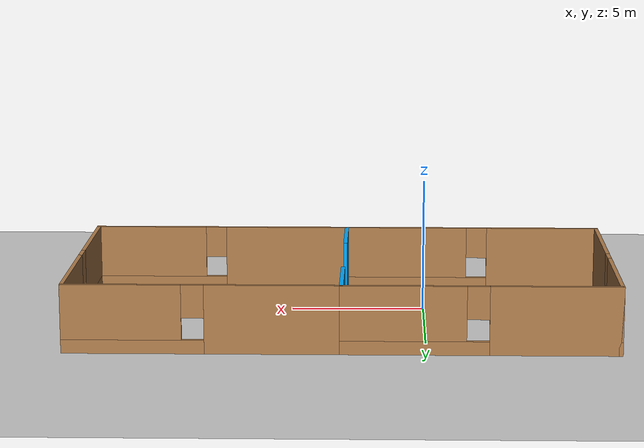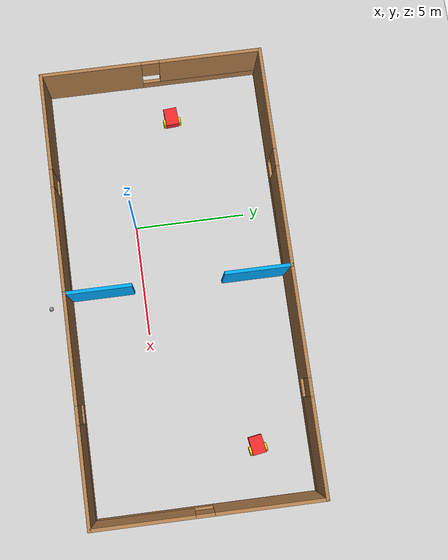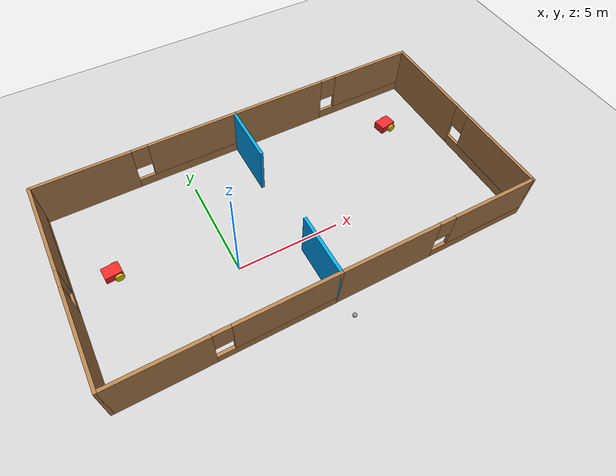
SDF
<sdf version="1.6">
 <world name="default">
  <plugin name="hello" filename="libhello.so"/>
  <light name="sun" type="directional">
   <pose>0 0 10 0 -0 0</pose>
   <diffuse>0.8 0.8 0.8 1</diffuse>
   <specular>0.2 0.2 0.2 1</specular>
   <attenuation>
    <range>1000</range>
    <constant>0.9</constant>
    <linear>0.01</linear>
    <quadratic>0.001</quadratic>
   </attenuation>
   <direction>-0.5 0.1 -0.9</direction>
  </light>
  <model name="ground_plane">
   <static>1</static>
   <link name="link">
    <collision name="collision">
     <geometry><plane><normal>0 0 1</normal><size>100 100</size></plane></geometry>
     <surface><friction><ode><mu>100</mu><mu2>50</mu2></ode></friction></surface>
    </collision>
    <visual name="visual">
     <cast_shadows>0</cast_shadows>
     <geometry><plane><normal>0 0 1</normal><size>100 100</size></plane></geometry>
     <material>
      <script><uri>file://media/materials/scripts/gazebo.material</uri><name>Gazebo/Grey</name></script>
     </material>
    </visual>
   </link>
  </model>
  <gravity>0 0 -9.8</gravity>
  <magnetic_field>6e-06 2.3e-05 -4.2e-05</magnetic_field>
  <atmosphere type="adiabatic"/>
  <physics name="default_physics" default="0" type="ode">
   <max_step_size>0.001</max_step_size>
   <real_time_factor>1</real_time_factor>
   <real_time_update_rate>1000</real_time_update_rate>
  </physics>
  <scene><ambient>0.4 0.4 0.4 1</ambient><background>0.7 0.7 0.7 1</background><shadows>1</shadows></scene>
  <spherical_coordinates>
   <surface_model>EARTH_WGS84</surface_model>
   <latitude_deg>0</latitude_deg>
   <longitude_deg>0</longitude_deg>
   <elevation>0</elevation>
   <heading_deg>0</heading_deg>
  </spherical_coordinates>
  <model name="building">
   <pose>2.99 1.585 0 0 -0 0</pose>
   <link name="Wall_1">
    <pose>-4.925 -4.925 0 0 -0 0</pose>
    <visual name="Wall_1_Visual_0">
     <pose>-2.80081 0 1.25 0 -0 0</pose>
     <geometry><box><size>4.39839 0.15 2.5</size></box></geometry>
     <material>
      <script><uri>file://media/materials/scripts/gazebo.material</uri><name>Gazebo/Wood</name></script>
      <ambient>1 1 1 1</ambient>
     </material>
     <meta><layer>0</layer></meta>
    </visual>
    <collision name="Wall_1_Collision_0">
     <geometry><box><size>4.39839 0.15 2.5</size></box></geometry>
     <pose>-2.80081 0 1.25 0 -0 0</pose>
    </collision>
    <visual name="Wall_1_Visual_1">
     <pose>2.19919 0 0.25 0 -0 0</pose>
     <geometry><box><size>5.60161 0.15 0.5</size></box></geometry>
     <material>
      <script><uri>file://media/materials/scripts/gazebo.material</uri><name>Gazebo/Wood</name></script>
      <ambient>1 1 1 1</ambient>
     </material>
     <meta><layer>0</layer></meta>
    </visual>
    <collision name="Wall_1_Collision_1">
     <geometry><box><size>5.60161 0.15 0.5</size></box></geometry>
     <pose>2.19919 0 0.25 0 -0 0</pose>
    </collision>
    <visual name="Wall_1_Visual_2">
     <pose>2.59919 0 1.5 0 -0 0</pose>
     <geometry><box><size>4.80161 0.15 2</size></box></geometry>
     <material>
      <script><uri>file://media/materials/scripts/gazebo.material</uri><name>Gazebo/Wood</name></script>
      <ambient>1 1 1 1</ambient>
     </material>
     <meta><layer>0</layer></meta>
    </visual>
    <collision name="Wall_1_Collision_2">
     <geometry><box><size>4.80161 0.15 2</size></box></geometry>
     <pose>2.59919 0 1.5 0 -0 0</pose>
    </collision>
    <visual name="Wall_1_Visual_3">
     <pose>-0.201613 0 1.9 0 -0 0</pose>
     <geometry><box><size>0.8 0.15 1.2</size></box></geometry>
     <material>
      <script><uri>file://media/materials/scripts/gazebo.material</uri><name>Gazebo/Wood</name></script>
      <ambient>1 1 1 1</ambient>
     </material>
     <meta><layer>0</layer></meta>
    </visual>
    <collision name="Wall_1_Collision_3">
     <geometry><box><size>0.8 0.15 1.2</size></box></geometry>
     <pose>-0.201613 0 1.9 0 -0 0</pose>
    </collision>
   </link>
   <link name="Wall_11">
    <pose>4.925 4.925 0 0 -0 0</pose>
    <visual name="Wall_11_Visual_0">
     <pose>-2.54076 0 1.25 0 -0 0</pose>
     <geometry><box><size>4.91847 0.15 2.5</size></box></geometry>
     <material>
      <script><uri>file://media/materials/scripts/gazebo.material</uri><name>Gazebo/Wood</name></script>
      <ambient>1 1 1 1</ambient>
     </material>
     <meta><layer>0</layer></meta>
    </visual>
    <collision name="Wall_11_Collision_0">
     <geometry><box><size>4.91847 0.15 2.5</size></box></geometry>
     <pose>-2.54076 0 1.25 0 -0 0</pose>
    </collision>
    <visual name="Wall_11_Visual_1">
     <pose>2.45924 0 0.25 0 -0 0</pose>
     <geometry><box><size>5.08153 0.15 0.5</size></box></geometry>
     <material>
      <script><uri>file://media/materials/scripts/gazebo.material</uri><name>Gazebo/Wood</name></script>
      <ambient>1 1 1 1</ambient>
     </material>
     <meta><layer>0</layer></meta>
    </visual>
    <collision name="Wall_11_Collision_1">
     <geometry><box><size>5.08153 0.15 0.5</size></box></geometry>
     <pose>2.45924 0 0.25 0 -0 0</pose>
    </collision>
    <visual name="Wall_11_Visual_2">
     <pose>2.85924 0 1.5 0 -0 0</pose>
     <geometry><box><size>4.28153 0.15 2</size></box></geometry>
     <material>
      <script><uri>file://media/materials/scripts/gazebo.material</uri><name>Gazebo/Wood</name></script>
      <ambient>1 1 1 1</ambient>
     </material>
     <meta><layer>0</layer></meta>
    </visual>
    <collision name="Wall_11_Collision_2">
     <geometry><box><size>4.28153 0.15 2</size></box></geometry>
     <pose>2.85924 0 1.5 0 -0 0</pose>
    </collision>
    <visual name="Wall_11_Visual_3">
     <pose>0.318475 0 1.9 0 -0 0</pose>
     <geometry><box><size>0.8 0.15 1.2</size></box></geometry>
     <material>
      <script><uri>file://media/materials/scripts/gazebo.material</uri><name>Gazebo/Wood</name></script>
      <ambient>1 1 1 1</ambient>
     </material>
     <meta><layer>0</layer></meta>
    </visual>
    <collision name="Wall_11_Collision_3">
     <geometry><box><size>0.8 0.15 1.2</size></box></geometry>
     <pose>0.318475 0 1.9 0 -0 0</pose>
    </collision>
   </link>
   <link name="Wall_12">
    <pose>9.85 0 0 0 0 -1.5708</pose>
    <visual name="Wall_12_Visual_0">
     <pose>-2.63217 0 1.25 0 -0 0</pose>
     <geometry><box><size>4.73566 0.15 2.5</size></box></geometry>
     <material>
      <script><uri>file://media/materials/scripts/gazebo.material</uri><name>Gazebo/Wood</name></script>
      <ambient>1 1 1 1</ambient>
     </material>
     <meta><layer>0</layer></meta>
    </visual>
    <collision name="Wall_12_Collision_0">
     <geometry><box><size>4.73566 0.15 2.5</size></box></geometry>
     <pose>-2.63217 0 1.25 0 -0 0</pose>
    </collision>
    <visual name="Wall_12_Visual_1">
     <pose>2.36783 0 0.25 0 -0 0</pose>
     <geometry><box><size>5.26434 0.15 0.5</size></box></geometry>
     <material>
      <script><uri>file://media/materials/scripts/gazebo.material</uri><name>Gazebo/Wood</name></script>
      <ambient>1 1 1 1</ambient>
     </material>
     <meta><layer>0</layer></meta>
    </visual>
    <collision name="Wall_12_Collision_1">
     <geometry><box><size>5.26434 0.15 0.5</size></box></geometry>
     <pose>2.36783 0 0.25 0 -0 0</pose>
    </collision>
    <visual name="Wall_12_Visual_2">
     <pose>2.76783 0 1.5 0 -0 0</pose>
     <geometry><box><size>4.46434 0.15 2</size></box></geometry>
     <material>
      <script><uri>file://media/materials/scripts/gazebo.material</uri><name>Gazebo/Wood</name></script>
      <ambient>1 1 1 1</ambient>
     </material>
     <meta><layer>0</layer></meta>
    </visual>
    <collision name="Wall_12_Collision_2">
     <geometry><box><size>4.46434 0.15 2</size></box></geometry>
     <pose>2.76783 0 1.5 0 -0 0</pose>
    </collision>
    <visual name="Wall_12_Visual_3">
     <pose>0.135659 0 1.9 0 -0 0</pose>
     <geometry><box><size>0.8 0.15 1.2</size></box></geometry>
     <material>
      <script><uri>file://media/materials/scripts/gazebo.material</uri><name>Gazebo/Wood</name></script>
      <ambient>1 1 1 1</ambient>
     </material>
     <meta><layer>0</layer></meta>
    </visual>
    <collision name="Wall_12_Collision_3">
     <geometry><box><size>0.8 0.15 1.2</size></box></geometry>
     <pose>0.135659 0 1.9 0 -0 0</pose>
    </collision>
   </link>
   <link name="Wall_2">
    <collision name="Wall_2_Collision">
     <geometry><box><size>3 0.15 2.5</size></box></geometry>
     <pose>0 0 1.25 0 -0 0</pose>
    </collision>
    <visual name="Wall_2_Visual">
     <pose>0 0 1.25 0 -0 0</pose>
     <geometry><box><size>3 0.15 2.5</size></box></geometry>
     <material>
      <script><uri>file://media/materials/scripts/gazebo.material</uri><name>Gazebo/Grey</name></script>
      <ambient>0 0.666667 1 1</ambient>
     </material>
     <meta><layer>0</layer></meta>
    </visual>
    <pose>0 -3.5 0 0 -0 1.5708</pose>
   </link>
   <link name="Wall_4">
    <pose>4.925 -4.925 0 0 -0 0</pose>
    <visual name="Wall_4_Visual_0">
     <pose>-2.57135 0 1.25 0 -0 0</pose>
     <geometry><box><size>4.85729 0.15 2.5</size></box></geometry>
     <material>
      <script><uri>file://media/materials/scripts/gazebo.material</uri><name>Gazebo/Wood</name></script>
      <ambient>1 1 1 1</ambient>
     </material>
     <meta><layer>0</layer></meta>
    </visual>
    <collision name="Wall_4_Collision_0">
     <geometry><box><size>4.85729 0.15 2.5</size></box></geometry>
     <pose>-2.57135 0 1.25 0 -0 0</pose>
    </collision>
    <visual name="Wall_4_Visual_1">
     <pose>2.42865 0 0.25 0 -0 0</pose>
     <geometry><box><size>5.14271 0.15 0.5</size></box></geometry>
     <material>
      <script><uri>file://media/materials/scripts/gazebo.material</uri><name>Gazebo/Wood</name></script>
      <ambient>1 1 1 1</ambient>
     </material>
     <meta><layer>0</layer></meta>
    </visual>
    <collision name="Wall_4_Collision_1">
     <geometry><box><size>5.14271 0.15 0.5</size></box></geometry>
     <pose>2.42865 0 0.25 0 -0 0</pose>
    </collision>
    <visual name="Wall_4_Visual_2">
     <pose>2.82865 0 1.5 0 -0 0</pose>
     <geometry><box><size>4.3427 0.15 2</size></box></geometry>
     <material>
      <script><uri>file://media/materials/scripts/gazebo.material</uri><name>Gazebo/Wood</name></script>
      <ambient>1 1 1 1</ambient>
     </material>
     <meta><layer>0</layer></meta>
    </visual>
    <collision name="Wall_4_Collision_2">
     <geometry><box><size>4.3427 0.15 2</size></box></geometry>
     <pose>2.82865 0 1.5 0 -0 0</pose>
    </collision>
    <visual name="Wall_4_Visual_3">
     <pose>0.257295 0 1.9 0 -0 0</pose>
     <geometry><box><size>0.8 0.15 1.2</size></box></geometry>
     <material>
      <script><uri>file://media/materials/scripts/gazebo.material</uri><name>Gazebo/Wood</name></script>
      <ambient>1 1 1 1</ambient>
     </material>
     <meta><layer>0</layer></meta>
    </visual>
    <collision name="Wall_4_Collision_3">
     <geometry><box><size>0.8 0.15 1.2</size></box></geometry>
     <pose>0.257295 0 1.9 0 -0 0</pose>
    </collision>
   </link>
   <link name="Wall_7">
    <pose>-9.85 0 0 0 -0 1.5708</pose>
    <visual name="Wall_7_Visual_0">
     <pose>-2.70665 0 1.25 0 -0 0</pose>
     <geometry><box><size>4.5867 0.15 2.5</size></box></geometry>
     <material>
      <script><uri>file://media/materials/scripts/gazebo.material</uri><name>Gazebo/Wood</name></script>
      <ambient>1 1 1 1</ambient>
     </material>
     <meta><layer>0</layer></meta>
    </visual>
    <collision name="Wall_7_Collision_0">
     <geometry><box><size>4.5867 0.15 2.5</size></box></geometry>
     <pose>-2.70665 0 1.25 0 -0 0</pose>
    </collision>
    <visual name="Wall_7_Visual_1">
     <pose>2.29335 0 0.25 0 -0 0</pose>
     <geometry><box><size>5.4133 0.15 0.5</size></box></geometry>
     <material>
      <script><uri>file://media/materials/scripts/gazebo.material</uri><name>Gazebo/Wood</name></script>
      <ambient>1 1 1 1</ambient>
     </material>
     <meta><layer>0</layer></meta>
    </visual>
    <collision name="Wall_7_Collision_1">
     <geometry><box><size>5.4133 0.15 0.5</size></box></geometry>
     <pose>2.29335 0 0.25 0 -0 0</pose>
    </collision>
    <visual name="Wall_7_Visual_2">
     <pose>2.69335 0 1.5 0 -0 0</pose>
     <geometry><box><size>4.6133 0.15 2</size></box></geometry>
     <material>
      <script><uri>file://media/materials/scripts/gazebo.material</uri><name>Gazebo/Wood</name></script>
      <ambient>1 1 1 1</ambient>
     </material>
     <meta><layer>0</layer></meta>
    </visual>
    <collision name="Wall_7_Collision_2">
     <geometry><box><size>4.6133 0.15 2</size></box></geometry>
     <pose>2.69335 0 1.5 0 -0 0</pose>
    </collision>
    <visual name="Wall_7_Visual_3">
     <pose>-0.013298 0 1.9 0 -0 0</pose>
     <geometry><box><size>0.8 0.15 1.2</size></box></geometry>
     <material>
      <script><uri>file://media/materials/scripts/gazebo.material</uri><name>Gazebo/Wood</name></script>
      <ambient>1 1 1 1</ambient>
     </material>
     <meta><layer>0</layer></meta>
    </visual>
    <collision name="Wall_7_Collision_3">
     <geometry><box><size>0.8 0.15 1.2</size></box></geometry>
     <pose>-0.013298 0 1.9 0 -0 0</pose>
    </collision>
   </link>
   <link name="Wall_8">
    <pose>-4.925 4.925 0 0 -0 0</pose>
    <visual name="Wall_8_Visual_0">
     <pose>-2.64785 0 1.25 0 -0 0</pose>
     <geometry><box><size>4.70429 0.15 2.5</size></box></geometry>
     <material>
      <script><uri>file://media/materials/scripts/gazebo.material</uri><name>Gazebo/Wood</name></script>
      <ambient>1 1 1 1</ambient>
     </material>
     <meta><layer>0</layer></meta>
    </visual>
    <collision name="Wall_8_Collision_0">
     <geometry><box><size>4.70429 0.15 2.5</size></box></geometry>
     <pose>-2.64785 0 1.25 0 -0 0</pose>
    </collision>
    <visual name="Wall_8_Visual_1">
     <pose>2.35215 0 0.25 0 -0 0</pose>
     <geometry><box><size>5.29571 0.15 0.5</size></box></geometry>
     <material>
      <script><uri>file://media/materials/scripts/gazebo.material</uri><name>Gazebo/Wood</name></script>
      <ambient>1 1 1 1</ambient>
     </material>
     <meta><layer>0</layer></meta>
    </visual>
    <collision name="Wall_8_Collision_1">
     <geometry><box><size>5.29571 0.15 0.5</size></box></geometry>
     <pose>2.35215 0 0.25 0 -0 0</pose>
    </collision>
    <visual name="Wall_8_Visual_2">
     <pose>2.75215 0 1.5 0 -0 0</pose>
     <geometry><box><size>4.49571 0.15 2</size></box></geometry>
     <material>
      <script><uri>file://media/materials/scripts/gazebo.material</uri><name>Gazebo/Wood</name></script>
      <ambient>1 1 1 1</ambient>
     </material>
     <meta><layer>0</layer></meta>
    </visual>
    <collision name="Wall_8_Collision_2">
     <geometry><box><size>4.49571 0.15 2</size></box></geometry>
     <pose>2.75215 0 1.5 0 -0 0</pose>
    </collision>
    <visual name="Wall_8_Visual_3">
     <pose>0.10429 0 1.9 0 -0 0</pose>
     <geometry><box><size>0.8 0.15 1.2</size></box></geometry>
     <material>
      <script><uri>file://media/materials/scripts/gazebo.material</uri><name>Gazebo/Wood</name></script>
      <ambient>1 1 1 1</ambient>
     </material>
     <meta><layer>0</layer></meta>
    </visual>
    <collision name="Wall_8_Collision_3">
     <geometry><box><size>0.8 0.15 1.2</size></box></geometry>
     <pose>0.10429 0 1.9 0 -0 0</pose>
    </collision>
   </link>
   <link name="Wall_9">
    <collision name="Wall_9_Collision">
     <geometry><box><size>3 0.15 2.5</size></box></geometry>
     <pose>0 0 1.25 0 -0 0</pose>
    </collision>
    <visual name="Wall_9_Visual">
     <pose>0 0 1.25 0 -0 0</pose>
     <geometry><box><size>3 0.15 2.5</size></box></geometry>
     <material>
      <script><uri>file://media/materials/scripts/gazebo.material</uri><name>Gazebo/Grey</name></script>
      <ambient>0 0.666667 1 1</ambient>
     </material>
     <meta><layer>0</layer></meta>
    </visual>
    <pose>0 3.5 0 0 0 -1.5708</pose>
   </link>
   <static>1</static>
  </model>
  <model name="robot_clone">
   <link name="link_0">
    <pose>-0.05 0 0.075004 0 -0 0</pose>
    <inertial>
     <mass>0.762516</mass>
     <inertia>
      <ixx>0.0753222</ixx>
      <ixy>0</ixy>
      <ixz>0</ixz>
      <iyy>0.21107</iyy>
      <iyz>0</iyz>
      <izz>0.262834</izz>
     </inertia>
    </inertial>
    <visual name="visual">
     <geometry><box><size>0.8 0.6 0.4</size></box></geometry>
     <material>
      <lighting>1</lighting>
      <script><uri>file://media/materials/scripts/gazebo.material</uri><name>Gazebo/Grey</name></script>
      <shader type="pixel"><normal_map>__default__</normal_map></shader>
      <ambient>0.937 0.161 0.161 1</ambient>
      <diffuse>0.7 0.7 0.7 1</diffuse>
      <specular>0.01 0.01 0.01 1</specular>
      <emissive>0 0 0 1</emissive>
     </material>
    </visual>
    <collision name="collision">
     <geometry><box><size>0.8 0.6 0.4</size></box></geometry>
     <surface>
      <friction>
       <ode><mu>1</mu><mu2>1</mu2><fdir1>0 0 0</fdir1><slip1>0</slip1><slip2>0</slip2></ode>
       <torsional>
        <coefficient>1</coefficient>
        <patch_radius>0</patch_radius>
        <surface_radius>0</surface_radius>
        <use_patch_radius>1</use_patch_radius>
        <ode><slip>0</slip></ode>
       </torsional>
      </friction>
      <bounce><restitution_coefficient>0</restitution_coefficient><threshold>1e+06</threshold></bounce>
      <contact>
       <collide_without_contact>0</collide_without_contact>
       <collide_without_contact_bitmask>1</collide_without_contact_bitmask>
       <collide_bitmask>1</collide_bitmask>
       <ode>
        <soft_cfm>0</soft_cfm>
        <soft_erp>0.2</soft_erp>
        <kp>1e+13</kp>
        <kd>1</kd>
        <max_vel>0.01</max_vel>
        <min_depth>0</min_depth>
       </ode>
       <bullet>
        <split_impulse>1</split_impulse>
        <split_impulse_penetration_threshold>-0.01</split_impulse_penetration_threshold>
        <soft_cfm>0</soft_cfm>
        <soft_erp>0.2</soft_erp>
        <kp>1e+13</kp>
        <kd>1</kd>
       </bullet>
      </contact>
     </surface>
    </collision>
   </link>
   <link name="link_1">
    <pose>0.15 -0.350019 -0.02501 1.5707 -0 0</pose>
    <inertial>
     <mass>1</mass>
     <inertia><ixx>0.145833</ixx><ixy>0</ixy><ixz>0</ixz><iyy>0.145833</iyy><iyz>0</iyz><izz>0.125</izz></inertia>
    </inertial>
    <visual name="visual">
     <geometry><cylinder><radius>0.2</radius><length>0.1</length></cylinder></geometry>
     <material>
      <lighting>1</lighting>
      <script><uri>file://media/materials/scripts/gazebo.material</uri><name>Gazebo/Grey</name></script>
      <shader type="pixel"><normal_map>__default__</normal_map></shader>
      <ambient>0.929 0.831 0 1</ambient>
      <diffuse>0.7 0.7 0.7 1</diffuse>
      <specular>0.01 0.01 0.01 1</specular>
      <emissive>0 0 0 1</emissive>
     </material>
    </visual>
    <collision name="collision">
     <geometry><cylinder><radius>0.2</radius><length>0.1</length></cylinder></geometry>
     <surface>
      <friction>
       <ode><mu>1</mu><mu2>1</mu2><fdir1>0 0 0</fdir1><slip1>0</slip1><slip2>0</slip2></ode>
       <torsional>
        <coefficient>1</coefficient>
        <patch_radius>0</patch_radius>
        <surface_radius>0</surface_radius>
        <use_patch_radius>1</use_patch_radius>
        <ode><slip>0</slip></ode>
       </torsional>
      </friction>
      <bounce><restitution_coefficient>0</restitution_coefficient><threshold>1e+06</threshold></bounce>
      <contact>
       <collide_without_contact>0</collide_without_contact>
       <collide_without_contact_bitmask>1</collide_without_contact_bitmask>
       <collide_bitmask>1</collide_bitmask>
       <ode>
        <soft_cfm>0</soft_cfm>
        <soft_erp>0.2</soft_erp>
        <kp>1e+13</kp>
        <kd>1</kd>
        <max_vel>0.01</max_vel>
        <min_depth>0</min_depth>
       </ode>
       <bullet>
        <split_impulse>1</split_impulse>
        <split_impulse_penetration_threshold>-0.01</split_impulse_penetration_threshold>
        <soft_cfm>0</soft_cfm>
        <soft_erp>0.2</soft_erp>
        <kp>1e+13</kp>
        <kd>1</kd>
       </bullet>
      </contact>
     </surface>
    </collision>
   </link>
   <link name="link_1_clone">
    <pose>0.15 0.350019 -0.024996 1.5707 -0 0</pose>
    <inertial>
     <mass>1</mass>
     <inertia><ixx>0.145833</ixx><ixy>0</ixy><ixz>0</ixz><iyy>0.145833</iyy><iyz>0</iyz><izz>0.125</izz></inertia>
    </inertial>
    <visual name="visual">
     <geometry><cylinder><radius>0.2</radius><length>0.1</length></cylinder></geometry>
     <material>
      <lighting>1</lighting>
      <script><uri>file://media/materials/scripts/gazebo.material</uri><name>Gazebo/Grey</name></script>
      <shader type="pixel"><normal_map>__default__</normal_map></shader>
      <ambient>0.929 0.831 0 1</ambient>
      <diffuse>0.7 0.7 0.7 1</diffuse>
      <specular>0.01 0.01 0.01 1</specular>
      <emissive>0 0 0 1</emissive>
     </material>
    </visual>
    <collision name="collision">
     <geometry><cylinder><radius>0.2</radius><length>0.1</length></cylinder></geometry>
     <surface>
      <friction>
       <ode><mu>1</mu><mu2>1</mu2><fdir1>0 0 0</fdir1><slip1>0</slip1><slip2>0</slip2></ode>
       <torsional>
        <coefficient>1</coefficient>
        <patch_radius>0</patch_radius>
        <surface_radius>0</surface_radius>
        <use_patch_radius>1</use_patch_radius>
        <ode><slip>0</slip></ode>
       </torsional>
      </friction>
      <bounce><restitution_coefficient>0</restitution_coefficient><threshold>1e+06</threshold></bounce>
      <contact>
       <collide_without_contact>0</collide_without_contact>
       <collide_without_contact_bitmask>1</collide_without_contact_bitmask>
       <collide_bitmask>1</collide_bitmask>
       <ode>
        <soft_cfm>0</soft_cfm>
        <soft_erp>0.2</soft_erp>
        <kp>1e+13</kp>
        <kd>1</kd>
        <max_vel>0.01</max_vel>
        <min_depth>0</min_depth>
       </ode>
       <bullet>
        <split_impulse>1</split_impulse>
        <split_impulse_penetration_threshold>-0.01</split_impulse_penetration_threshold>
        <soft_cfm>0</soft_cfm>
        <soft_erp>0.2</soft_erp>
        <kp>1e+13</kp>
        <kd>1</kd>
       </bullet>
      </contact>
     </surface>
    </collision>
   </link>
   <link name="link_2">
    <pose>-0.25 0 -0.024996 0 -0 0</pose>
    <inertial>
     <mass>1</mass>
     <inertia><ixx>0.1</ixx><ixy>0</ixy><ixz>0</ixz><iyy>0.1</iyy><iyz>0</iyz><izz>0.1</izz></inertia>
    </inertial>
    <visual name="visual">
     <geometry><sphere><radius>0.2</radius></sphere></geometry>
     <material>
      <lighting>1</lighting>
      <script><uri>file://media/materials/scripts/gazebo.material</uri><name>Gazebo/Grey</name></script>
      <shader type="pixel"><normal_map>__default__</normal_map></shader>
      <ambient>0.451 0.824 0.086 1</ambient>
      <diffuse>0.7 0.7 0.7 1</diffuse>
      <specular>0.01 0.01 0.01 1</specular>
      <emissive>0 0 0 1</emissive>
     </material>
    </visual>
    <collision name="collision">
     <geometry><sphere><radius>0.2</radius></sphere></geometry>
     <surface>
      <friction>
       <ode><mu>1</mu><mu2>1</mu2><fdir1>0 0 0</fdir1><slip1>0</slip1><slip2>0</slip2></ode>
       <torsional>
        <coefficient>1</coefficient>
        <patch_radius>0</patch_radius>
        <surface_radius>0</surface_radius>
        <use_patch_radius>1</use_patch_radius>
        <ode><slip>0</slip></ode>
       </torsional>
      </friction>
      <bounce><restitution_coefficient>0</restitution_coefficient><threshold>1e+06</threshold></bounce>
      <contact>
       <collide_without_contact>0</collide_without_contact>
       <collide_without_contact_bitmask>1</collide_without_contact_bitmask>
       <collide_bitmask>1</collide_bitmask>
       <ode>
        <soft_cfm>0</soft_cfm>
        <soft_erp>0.2</soft_erp>
        <kp>1e+13</kp>
        <kd>1</kd>
        <max_vel>0.01</max_vel>
        <min_depth>0</min_depth>
       </ode>
       <bullet>
        <split_impulse>1</split_impulse>
        <split_impulse_penetration_threshold>-0.01</split_impulse_penetration_threshold>
        <soft_cfm>0</soft_cfm>
        <soft_erp>0.2</soft_erp>
        <kp>1e+13</kp>
        <kd>1</kd>
       </bullet>
      </contact>
     </surface>
    </collision>
   </link>
   <joint name="link_0_JOINT_0" type="revolute">
    <parent>link_0</parent>
    <child>link_1</child>
    <axis>
     <xyz>0 0 -1</xyz>
     <use_parent_model_frame>0</use_parent_model_frame>
     <limit>
      <lower>-1.79769e+308</lower>
      <upper>1.79769e+308</upper>
      <effort>-1</effort>
      <velocity>-1</velocity>
     </limit>
     <dynamics>
      <spring_reference>0</spring_reference>
      <spring_stiffness>0</spring_stiffness>
      <damping>0</damping>
      <friction>0</friction>
     </dynamics>
    </axis>
    <physics>
     <ode><limit><cfm>0</cfm><erp>0.2</erp></limit><suspension><cfm>0</cfm><erp>0.2</erp></suspension></ode>
    </physics>
   </joint>
   <joint name="link_0_JOINT_1" type="revolute">
    <parent>link_0</parent>
    <child>link_1_clone</child>
    <axis>
     <xyz>0 0 1</xyz>
     <use_parent_model_frame>0</use_parent_model_frame>
     <limit>
      <lower>-1.79769e+308</lower>
      <upper>1.79769e+308</upper>
      <effort>-1</effort>
      <velocity>-1</velocity>
     </limit>
     <dynamics>
      <spring_reference>0</spring_reference>
      <spring_stiffness>0</spring_stiffness>
      <damping>0</damping>
      <friction>0</friction>
     </dynamics>
    </axis>
    <physics>
     <ode><limit><cfm>0</cfm><erp>0.2</erp></limit><suspension><cfm>0</cfm><erp>0.2</erp></suspension></ode>
    </physics>
   </joint>
   <joint name="link_0_JOINT_2" type="ball">
    <parent>link_0</parent>
    <child>link_2</child>
    <physics>
     <ode><limit><cfm>0</cfm><erp>0.2</erp></limit><suspension><cfm>0</cfm><erp>0.2</erp></suspension></ode>
    </physics>
   </joint>
   <static>0</static>
   <pose>10.5041 4.14245 0.225004 -2e-05 -3e-05 0.15976</pose>
  </model>
  <model name="robot_clone_clone">
   <link name="link_0">
    <pose>-0.05 0 0.075004 0 -0 0</pose>
    <inertial>
     <mass>0.762516</mass>
     <inertia>
      <ixx>0.0753222</ixx>
      <ixy>0</ixy>
      <ixz>0</ixz>
      <iyy>0.21107</iyy>
      <iyz>0</iyz>
      <izz>0.262834</izz>
     </inertia>
    </inertial>
    <visual name="visual">
     <geometry><box><size>0.8 0.6 0.4</size></box></geometry>
     <material>
      <lighting>1</lighting>
      <script><uri>file://media/materials/scripts/gazebo.material</uri><name>Gazebo/Grey</name></script>
      <shader type="pixel"><normal_map>__default__</normal_map></shader>
      <ambient>0.937 0.161 0.161 1</ambient>
      <diffuse>0.7 0.7 0.7 1</diffuse>
      <specular>0.01 0.01 0.01 1</specular>
      <emissive>0 0 0 1</emissive>
     </material>
    </visual>
    <collision name="collision">
     <geometry><box><size>0.8 0.6 0.4</size></box></geometry>
     <surface>
      <friction>
       <ode><mu>1</mu><mu2>1</mu2><fdir1>0 0 0</fdir1><slip1>0</slip1><slip2>0</slip2></ode>
       <torsional>
        <coefficient>1</coefficient>
        <patch_radius>0</patch_radius>
        <surface_radius>0</surface_radius>
        <use_patch_radius>1</use_patch_radius>
        <ode><slip>0</slip></ode>
       </torsional>
      </friction>
      <bounce><restitution_coefficient>0</restitution_coefficient><threshold>1e+06</threshold></bounce>
      <contact>
       <collide_without_contact>0</collide_without_contact>
       <collide_without_contact_bitmask>1</collide_without_contact_bitmask>
       <collide_bitmask>1</collide_bitmask>
       <ode>
        <soft_cfm>0</soft_cfm>
        <soft_erp>0.2</soft_erp>
        <kp>1e+13</kp>
        <kd>1</kd>
        <max_vel>0.01</max_vel>
        <min_depth>0</min_depth>
       </ode>
       <bullet>
        <split_impulse>1</split_impulse>
        <split_impulse_penetration_threshold>-0.01</split_impulse_penetration_threshold>
        <soft_cfm>0</soft_cfm>
        <soft_erp>0.2</soft_erp>
        <kp>1e+13</kp>
        <kd>1</kd>
       </bullet>
      </contact>
     </surface>
    </collision>
   </link>
   <link name="link_1">
    <pose>0.15 -0.350019 -0.02501 1.5707 -0 0</pose>
    <inertial>
     <mass>1</mass>
     <inertia><ixx>0.145833</ixx><ixy>0</ixy><ixz>0</ixz><iyy>0.145833</iyy><iyz>0</iyz><izz>0.125</izz></inertia>
    </inertial>
    <visual name="visual">
     <geometry><cylinder><radius>0.2</radius><length>0.1</length></cylinder></geometry>
     <material>
      <lighting>1</lighting>
      <script><uri>file://media/materials/scripts/gazebo.material</uri><name>Gazebo/Grey</name></script>
      <shader type="pixel"><normal_map>__default__</normal_map></shader>
      <ambient>0.929 0.831 0 1</ambient>
      <diffuse>0.7 0.7 0.7 1</diffuse>
      <specular>0.01 0.01 0.01 1</specular>
      <emissive>0 0 0 1</emissive>
     </material>
    </visual>
    <collision name="collision">
     <geometry><cylinder><radius>0.2</radius><length>0.1</length></cylinder></geometry>
     <surface>
      <friction>
       <ode><mu>1</mu><mu2>1</mu2><fdir1>0 0 0</fdir1><slip1>0</slip1><slip2>0</slip2></ode>
       <torsional>
        <coefficient>1</coefficient>
        <patch_radius>0</patch_radius>
        <surface_radius>0</surface_radius>
        <use_patch_radius>1</use_patch_radius>
        <ode><slip>0</slip></ode>
       </torsional>
      </friction>
      <bounce><restitution_coefficient>0</restitution_coefficient><threshold>1e+06</threshold></bounce>
      <contact>
       <collide_without_contact>0</collide_without_contact>
       <collide_without_contact_bitmask>1</collide_without_contact_bitmask>
       <collide_bitmask>1</collide_bitmask>
       <ode>
        <soft_cfm>0</soft_cfm>
        <soft_erp>0.2</soft_erp>
        <kp>1e+13</kp>
        <kd>1</kd>
        <max_vel>0.01</max_vel>
        <min_depth>0</min_depth>
       </ode>
       <bullet>
        <split_impulse>1</split_impulse>
        <split_impulse_penetration_threshold>-0.01</split_impulse_penetration_threshold>
        <soft_cfm>0</soft_cfm>
        <soft_erp>0.2</soft_erp>
        <kp>1e+13</kp>
        <kd>1</kd>
       </bullet>
      </contact>
     </surface>
    </collision>
   </link>
   <link name="link_1_clone">
    <pose>0.15 0.350019 -0.024996 1.5707 -0 0</pose>
    <inertial>
     <mass>1</mass>
     <inertia><ixx>0.145833</ixx><ixy>0</ixy><ixz>0</ixz><iyy>0.145833</iyy><iyz>0</iyz><izz>0.125</izz></inertia>
    </inertial>
    <visual name="visual">
     <geometry><cylinder><radius>0.2</radius><length>0.1</length></cylinder></geometry>
     <material>
      <lighting>1</lighting>
      <script><uri>file://media/materials/scripts/gazebo.material</uri><name>Gazebo/Grey</name></script>
      <shader type="pixel"><normal_map>__default__</normal_map></shader>
      <ambient>0.929 0.831 0 1</ambient>
      <diffuse>0.7 0.7 0.7 1</diffuse>
      <specular>0.01 0.01 0.01 1</specular>
      <emissive>0 0 0 1</emissive>
     </material>
    </visual>
    <collision name="collision">
     <geometry><cylinder><radius>0.2</radius><length>0.1</length></cylinder></geometry>
     <surface>
      <friction>
       <ode><mu>1</mu><mu2>1</mu2><fdir1>0 0 0</fdir1><slip1>0</slip1><slip2>0</slip2></ode>
       <torsional>
        <coefficient>1</coefficient>
        <patch_radius>0</patch_radius>
        <surface_radius>0</surface_radius>
        <use_patch_radius>1</use_patch_radius>
        <ode><slip>0</slip></ode>
       </torsional>
      </friction>
      <bounce><restitution_coefficient>0</restitution_coefficient><threshold>1e+06</threshold></bounce>
      <contact>
       <collide_without_contact>0</collide_without_contact>
       <collide_without_contact_bitmask>1</collide_without_contact_bitmask>
       <collide_bitmask>1</collide_bitmask>
       <ode>
        <soft_cfm>0</soft_cfm>
        <soft_erp>0.2</soft_erp>
        <kp>1e+13</kp>
        <kd>1</kd>
        <max_vel>0.01</max_vel>
        <min_depth>0</min_depth>
       </ode>
       <bullet>
        <split_impulse>1</split_impulse>
        <split_impulse_penetration_threshold>-0.01</split_impulse_penetration_threshold>
        <soft_cfm>0</soft_cfm>
        <soft_erp>0.2</soft_erp>
        <kp>1e+13</kp>
        <kd>1</kd>
       </bullet>
      </contact>
     </surface>
    </collision>
   </link>
   <link name="link_2">
    <pose>-0.25 0 -0.024996 0 -0 0</pose>
    <inertial>
     <mass>1</mass>
     <inertia><ixx>0.1</ixx><ixy>0</ixy><ixz>0</ixz><iyy>0.1</iyy><iyz>0</iyz><izz>0.1</izz></inertia>
    </inertial>
    <visual name="visual">
     <geometry><sphere><radius>0.2</radius></sphere></geometry>
     <material>
      <lighting>1</lighting>
      <script><uri>file://media/materials/scripts/gazebo.material</uri><name>Gazebo/Grey</name></script>
      <shader type="pixel"><normal_map>__default__</normal_map></shader>
      <ambient>0.451 0.824 0.086 1</ambient>
      <diffuse>0.7 0.7 0.7 1</diffuse>
      <specular>0.01 0.01 0.01 1</specular>
      <emissive>0 0 0 1</emissive>
     </material>
    </visual>
    <collision name="collision">
     <geometry><sphere><radius>0.2</radius></sphere></geometry>
     <surface>
      <friction>
       <ode><mu>1</mu><mu2>1</mu2><fdir1>0 0 0</fdir1><slip1>0</slip1><slip2>0</slip2></ode>
       <torsional>
        <coefficient>1</coefficient>
        <patch_radius>0</patch_radius>
        <surface_radius>0</surface_radius>
        <use_patch_radius>1</use_patch_radius>
        <ode><slip>0</slip></ode>
       </torsional>
      </friction>
      <bounce><restitution_coefficient>0</restitution_coefficient><threshold>1e+06</threshold></bounce>
      <contact>
       <collide_without_contact>0</collide_without_contact>
       <collide_without_contact_bitmask>1</collide_without_contact_bitmask>
       <collide_bitmask>1</collide_bitmask>
       <ode>
        <soft_cfm>0</soft_cfm>
        <soft_erp>0.2</soft_erp>
        <kp>1e+13</kp>
        <kd>1</kd>
        <max_vel>0.01</max_vel>
        <min_depth>0</min_depth>
       </ode>
       <bullet>
        <split_impulse>1</split_impulse>
        <split_impulse_penetration_threshold>-0.01</split_impulse_penetration_threshold>
        <soft_cfm>0</soft_cfm>
        <soft_erp>0.2</soft_erp>
        <kp>1e+13</kp>
        <kd>1</kd>
       </bullet>
      </contact>
     </surface>
    </collision>
   </link>
   <joint name="link_0_JOINT_0" type="revolute">
    <parent>link_0</parent>
    <child>link_1</child>
    <axis>
     <xyz>0 0 -1</xyz>
     <use_parent_model_frame>0</use_parent_model_frame>
     <limit>
      <lower>-1.79769e+308</lower>
      <upper>1.79769e+308</upper>
      <effort>-1</effort>
      <velocity>-1</velocity>
     </limit>
     <dynamics>
      <spring_reference>0</spring_reference>
      <spring_stiffness>0</spring_stiffness>
      <damping>0</damping>
      <friction>0</friction>
     </dynamics>
    </axis>
    <physics>
     <ode><limit><cfm>0</cfm><erp>0.2</erp></limit><suspension><cfm>0</cfm><erp>0.2</erp></suspension></ode>
    </physics>
   </joint>
   <joint name="link_0_JOINT_1" type="revolute">
    <parent>link_0</parent>
    <child>link_1_clone</child>
    <axis>
     <xyz>0 0 1</xyz>
     <use_parent_model_frame>0</use_parent_model_frame>
     <limit>
      <lower>-1.79769e+308</lower>
      <upper>1.79769e+308</upper>
      <effort>-1</effort>
      <velocity>-1</velocity>
     </limit>
     <dynamics>
      <spring_reference>0</spring_reference>
      <spring_stiffness>0</spring_stiffness>
      <damping>0</damping>
      <friction>0</friction>
     </dynamics>
    </axis>
    <physics>
     <ode><limit><cfm>0</cfm><erp>0.2</erp></limit><suspension><cfm>0</cfm><erp>0.2</erp></suspension></ode>
    </physics>
   </joint>
   <joint name="link_0_JOINT_2" type="ball">
    <parent>link_0</parent>
    <child>link_2</child>
    <physics>
     <ode><limit><cfm>0</cfm><erp>0.2</erp></limit><suspension><cfm>0</cfm><erp>0.2</erp></suspension></ode>
    </physics>
   </joint>
   <static>0</static>
   <pose>-4.95445 2.27237 0.225004 -1.9e-05 -3.3e-05 0.070187</pose>
  </model>
  <model name="my_ball">
   <link name="link_0">
    <inertial>
     <mass>1</mass>
     <inertia><ixx>0.1</ixx><ixy>0</ixy><ixz>0</ixz><iyy>0.1</iyy><iyz>0</iyz><izz>0.1</izz></inertia>
    </inertial>
    <visual name="visual">
     <geometry><sphere><radius>0.1</radius></sphere></geometry>
     <material>
      <lighting>1</lighting>
      <script><uri>file://media/materials/scripts/gazebo.material</uri><name>Gazebo/Grey</name></script>
      <shader type="pixel"><normal_map>__default__</normal_map></shader>
      <ambient>1 1 1 1</ambient>
      <diffuse>1 1 1 1</diffuse>
      <specular>1 1 1 1</specular>
      <emissive>1 1 1 1</emissive>
     </material>
    </visual>
    <collision name="collision">
     <geometry><sphere><radius>0.1</radius></sphere></geometry>
     <surface>
      <friction>
       <ode><mu>1</mu><mu2>1</mu2><fdir1>0 0 0</fdir1><slip1>0</slip1><slip2>0</slip2></ode>
       <torsional>
        <coefficient>1</coefficient>
        <patch_radius>0</patch_radius>
        <surface_radius>0</surface_radius>
        <use_patch_radius>1</use_patch_radius>
        <ode><slip>0</slip></ode>
       </torsional>
      </friction>
      <bounce><restitution_coefficient>0</restitution_coefficient><threshold>1e+06</threshold></bounce>
      <contact>
       <collide_without_contact>0</collide_without_contact>
       <collide_without_contact_bitmask>1</collide_without_contact_bitmask>
       <collide_bitmask>1</collide_bitmask>
       <ode>
        <soft_cfm>0</soft_cfm>
        <soft_erp>0.2</soft_erp>
        <kp>1e+13</kp>
        <kd>1</kd>
        <max_vel>0.01</max_vel>
        <min_depth>0</min_depth>
       </ode>
       <bullet>
        <split_impulse>1</split_impulse>
        <split_impulse_penetration_threshold>-0.01</split_impulse_penetration_threshold>
        <soft_cfm>0</soft_cfm>
        <soft_erp>0.2</soft_erp>
        <kp>1e+13</kp>
        <kd>1</kd>
       </bullet>
      </contact>
     </surface>
    </collision>
   </link>
   <static>0</static>
   <pose>3.28471 -4.29069 0.1 0 -0 0</pose>
  </model>
 </world>
</sdf>
